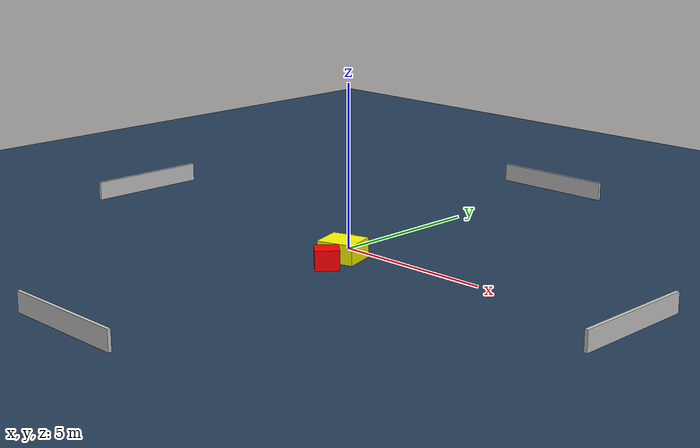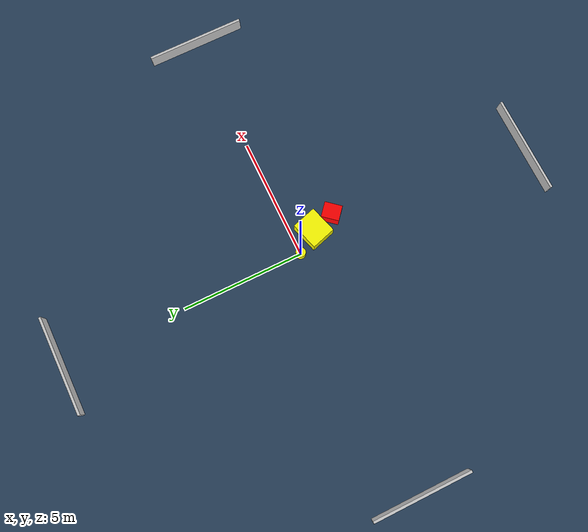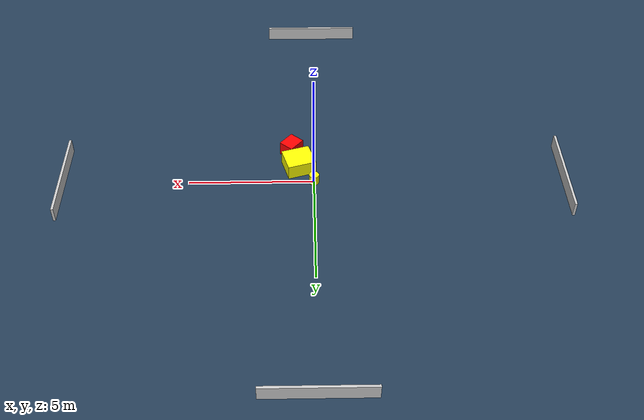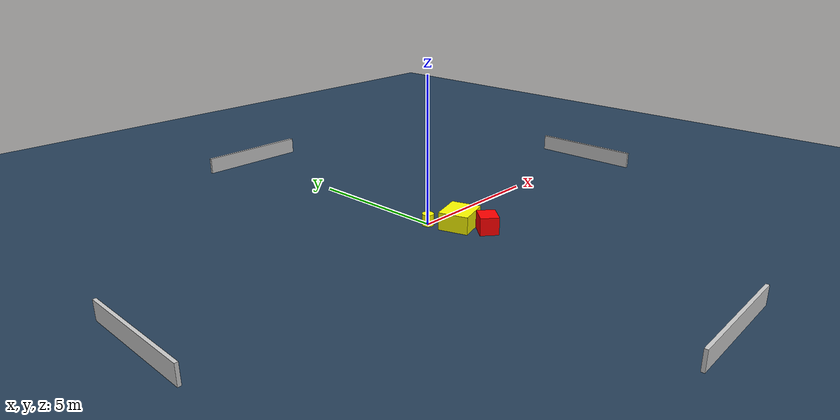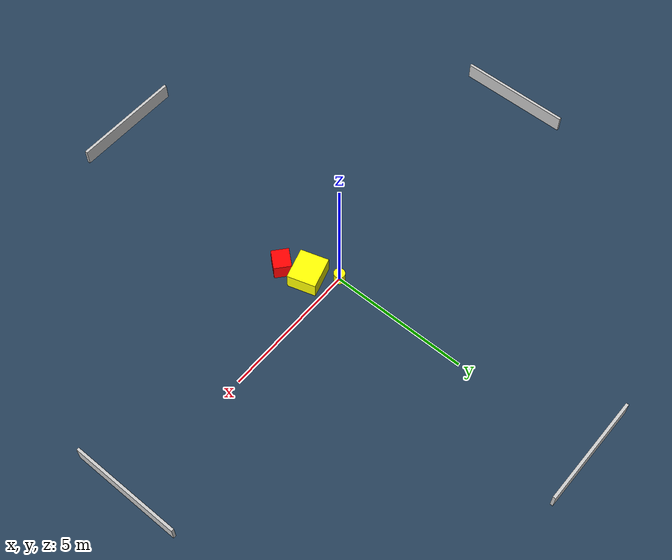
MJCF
<?xml version="1.0" ?>
<mujoco model="generated_environment">
  <option timestep="0.01" integrator="RK4" cone="elliptic"/>
  <default>
    <geom density="1"/>
  </default>
  <asset>
    <texture builtin="gradient" height="3072" name="skybox" rgb1="0.3 0.5 0.7" rgb2="0 0 0" type="skybox" width="512"/>
    <texture builtin="checker" height="300" name="groundplane" rgb1="0.2 0.3 0.4" rgb2="0.1 0.2 0.3" type="2d" width="300"/>
    <material name="groundplane" reflectance="0.2" texrepeat="5 5" texture="groundplane"/>
  </asset>
  <worldbody>
    <light dir="0 0 -1" directional="true" pos="0 0 1.5"/>
    <geom condim="3" friction="0.5 0.005 0.001" material="groundplane" name="floor" pos="0 0 0" size="0 0 0.05" type="plane"/>
    <body name="walls">
      <geom name="wall_1" condim="4" pos="-10.0 0.0 0.3" rgba="0.800000011920929 0.800000011920929 0.800000011920929 1.0" size="0.05 2.0 0.3" type="box"/>
      <geom name="wall_2" condim="4" pos="10.0 0.0 0.3" rgba="0.800000011920929 0.800000011920929 0.800000011920929 1.0" size="0.05 2.0 0.3" type="box"/>
      <geom name="wall_3" condim="4" pos="0.0 -10.0 0.3" rgba="0.800000011920929 0.800000011920929 0.800000011920929 1.0" size="2.0 0.05 0.3" type="box"/>
      <geom name="wall_4" condim="4" pos="0.0 10.0 0.3" rgba="0.800000011920929 0.800000011920929 0.800000011920929 1.0" size="2.0 0.05 0.3" type="box"/>
    </body>
    <body name="robot">
      <joint name="joint_x" type="slide" pos="0 0 0" axis="1 0 0"/>
      <joint name="joint_y" type="slide" pos="0 0 0" axis="0 1 0"/>
      <geom name="robot" type="cylinder" pos="0.0 0.0 0.2" size="0.2 0.2 0.0" mass="5.0" friction="1.0 0.005 0.0001" condim="4" rgba="1.0 1.0 0.0 1.0"/>
    </body>
    <body name="obstacle_1_movable">
      <geom name="obstacle_1_movable" condim="4" pos="0.6108051930168971 -0.8538348635745631 0.3" euler="0 0 196.7924063737236" friction="0.0 0.005 0.001" rgba="1.0 1.0 0.0 1.0" size="0.5737101366179482 0.5133341140879681 0.3" type="box" mass="0.1"/>
      <joint type="free"/>
    </body>
    <body name="obstacle_2_static">
      <geom name="obstacle_2_static" condim="4" pos="0.9013002252501088 -1.782875178473239 0.3" euler="0 0 319.5031100310772" friction="0.0 0.005 0.001" rgba="1.0 0.0 0.0 1.0" size="0.3126887975174089 0.3598182752171567 0.3" type="box"/>
    </body>
  </worldbody>
  <actuator>
    <motor name="actuator_x" joint="joint_x" gear="1" ctrlrange="-1 1"/>
    <motor name="actuator_y" joint="joint_y" gear="1" ctrlrange="-1 1"/>
  </actuator>
</mujoco>
